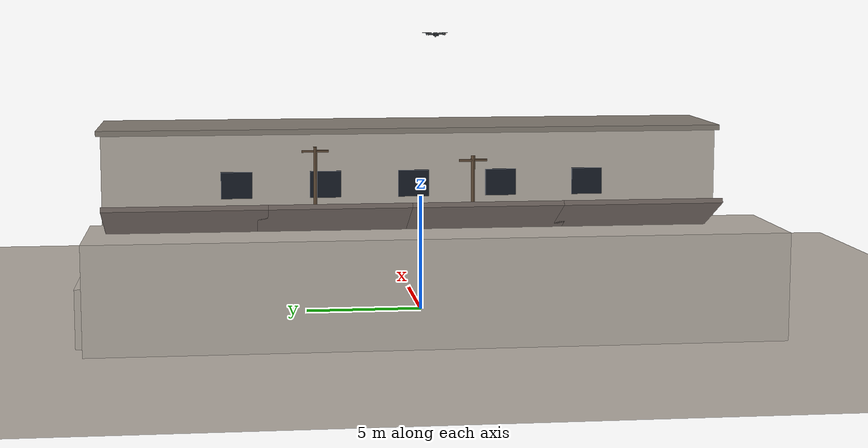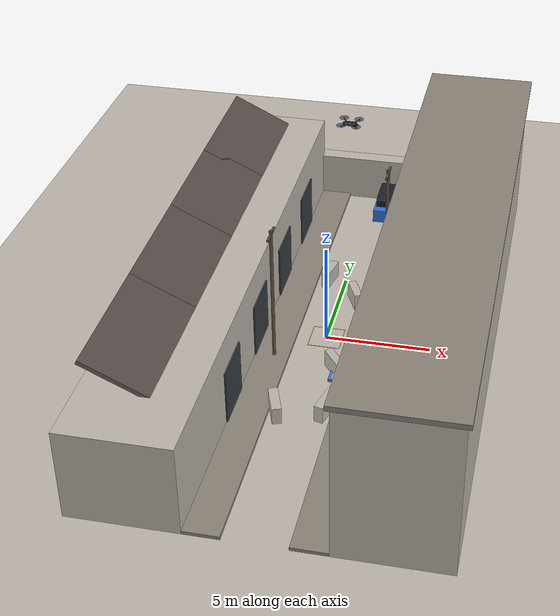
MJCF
<mujoco model="urban_street_quadrotor_autoland">

  <compiler angle="radian" autolimits="true" balanceinertia="true"/>
  <option gravity="0 0 -9.81" timestep="0.002" integrator="RK4"/>

  <default>
    <joint damping="0.002"/>
    <geom condim="4" friction="1.0 0.05 0.005" solref="0.01 1" solimp="0.9 0.95 0.001"/>
  </default>

  <asset>
    <!-- Warm Golden-Hour Skybox Matching Reference Image -->
    <texture name="sky" type="skybox" builtin="gradient" rgb1="0.45 0.40 0.35" rgb2="0.18 0.14 0.20" width="512" height="512"/>

    <!-- High-Resolution Textures -->
    <texture name="pad_tex" type="2d" file="pad_texture.png"/>
    <material name="pad_mat" texture="pad_tex" texrepeat="1 1" shininess="0.2" specular="0.1"/>

    <texture name="street_tex" type="2d" file="street_tex.png"/>
    <material name="street_mat" texture="street_tex" texrepeat="4 8" shininess="0.08" specular="0.05"/>

    <texture name="brick_tex" type="2d" file="brick_tex.png"/>
    <material name="brick_mat" texture="brick_tex" texrepeat="3 3" shininess="0.05"/>

    <texture name="stucco_tex" type="2d" file="stucco_tex.png"/>
    <material name="stucco_mat" texture="stucco_tex" texrepeat="4 4" shininess="0.05"/>

    <texture name="barricade_tex" type="2d" file="barricade_tex.png"/>
    <material name="barricade_mat" texture="barricade_tex" texrepeat="1 1" shininess="0.1"/>

    <!-- Urban Materials -->
    <material name="roof_sheet" rgba="0.42 0.38 0.36 1.0" shininess="0.3"/>
    <material name="sidewalk_concrete" rgba="0.55 0.52 0.48 1.0" shininess="0.1"/>
    <material name="wood_pole" rgba="0.38 0.30 0.22 1.0"/>
    <material name="metal_dark" rgba="0.22 0.24 0.26 1.0" shininess="0.6"/>
    <material name="window_glass" rgba="0.10 0.12 0.16 1.0" shininess="0.9" specular="0.8"/>
    <material name="hydrant_red" rgba="0.85 0.18 0.12 1.0" shininess="0.5"/>
    <material name="car_blue" rgba="0.20 0.45 0.85 1.0" shininess="0.7"/>

    <!-- Reference Drone Materials (Matte Charcoal & Gunmetal) -->
    <material name="matte_charcoal" rgba="0.15 0.17 0.19 1.0" shininess="0.3" specular="0.2"/>
    <material name="body_dark_accent" rgba="0.10 0.11 0.12 1.0" shininess="0.5" specular="0.3"/>
    <material name="motor_gunmetal" rgba="0.35 0.38 0.42 1.0" shininess="0.8" specular="0.6"/>
    <material name="hub_black" rgba="0.05 0.05 0.05 1.0"/>
    <material name="led_glow_blue" rgba="0.20 0.65 1.0 1.0" emission="1.5"/>
    <material name="led_glow_red" rgba="1.0 0.25 0.25 1.0" emission="1.2"/>
    <material name="prop_translucent" rgba="0.12 0.14 0.16 0.55"/>
    <material name="lens_glass" rgba="0.02 0.02 0.05 1.0" shininess="1.0" specular="0.9"/>
  </asset>

  <visual>
    <headlight ambient="0.55 0.50 0.45" diffuse="0.80 0.72 0.65" specular="0.25 0.22 0.18"/>
    <rgba fog="0.25 0.20 0.22 1"/>
    <quality shadowsize="2048"/>
  </visual>

  <worldbody>
    <!-- Ground Road Surface (Corridor Street) -->
    <geom name="ground" type="plane" size="40 40 0.1" material="street_mat" pos="0 0 0"/>

    <!-- URBAN ENVIRONMENT MODEL                                            -->

    <!-- Left Side: Industrial Warehouses with Gabled Roofs & Garage Doors -->
    <body name="warehouse_block_left" pos="-5.5 0 0">
      <geom name="wh_wall_1" type="box" size="2.5 14.0 2.2" pos="0 0 2.2" material="brick_mat" contype="1" conaffinity="1"/>
      <geom name="wh_roof_1" type="box" size="2.6 3.2 0.1" pos="0 -8.0 4.6" euler="0 0.45 0" material="roof_sheet"/>
      <geom name="wh_roof_2" type="box" size="2.6 3.2 0.1" pos="0 -2.0 4.6" euler="0 0.45 0" material="roof_sheet"/>
      <geom name="wh_roof_3" type="box" size="2.6 3.2 0.1" pos="0 4.0 4.6" euler="0 0.45 0" material="roof_sheet"/>
      <geom name="wh_roof_4" type="box" size="2.6 3.2 0.1" pos="0 10.0 4.6" euler="0 0.45 0" material="roof_sheet"/>

      <geom name="garage_door_1" type="box" size="0.05 1.2 1.4" pos="2.52 -6.0 1.4" material="metal_dark"/>
      <geom name="garage_door_2" type="box" size="0.05 1.2 1.4" pos="2.52 -1.0 1.4" material="metal_dark"/>
      <geom name="garage_door_3" type="box" size="0.05 1.2 1.4" pos="2.52 4.0 1.4" material="metal_dark"/>
      <geom name="garage_door_4" type="box" size="0.05 1.2 1.4" pos="2.52 9.0 1.4" material="metal_dark"/>
      <geom name="sidewalk_l" type="box" size="0.8 14.0 0.08" pos="3.3 0 0.08" material="sidewalk_concrete"/>
    </body>

    <!-- Right Side: Weathered Ochre Stucco Multi-Story Apartment Building -->
    <body name="building_block_right" pos="5.5 0 0">
      <geom name="bld_main" type="box" size="2.5 14.0 3.8" pos="0 0 3.8" material="stucco_mat" contype="1" conaffinity="1"/>
      <geom name="bld_cornice" type="box" size="2.65 14.2 0.12" pos="0 0 7.6" material="sidewalk_concrete"/>

      <geom name="win_1_1" type="box" size="0.05 0.7 0.6" pos="-2.52 -8.0 2.2" material="window_glass"/>
      <geom name="win_1_2" type="box" size="0.05 0.7 0.6" pos="-2.52 -4.0 2.2" material="window_glass"/>
      <geom name="win_1_3" type="box" size="0.05 0.7 0.6" pos="-2.52 0.0 2.2" material="window_glass"/>
      <geom name="win_1_4" type="box" size="0.05 0.7 0.6" pos="-2.52 4.0 2.2" material="window_glass"/>
      <geom name="win_1_5" type="box" size="0.05 0.7 0.6" pos="-2.52 8.0 2.2" material="window_glass"/>

      <geom name="win_2_1" type="box" size="0.05 0.7 0.6" pos="-2.52 -8.0 5.2" material="window_glass"/>
      <geom name="win_2_2" type="box" size="0.05 0.7 0.6" pos="-2.52 -4.0 5.2" material="window_glass"/>
      <geom name="win_2_3" type="box" size="0.05 0.7 0.6" pos="-2.52 0.0 5.2" material="window_glass"/>
      <geom name="win_2_4" type="box" size="0.05 0.7 0.6" pos="-2.52 4.0 5.2" material="window_glass"/>
      <geom name="win_2_5" type="box" size="0.05 0.7 0.6" pos="-2.52 8.0 5.2" material="window_glass"/>

      <geom name="sidewalk_r" type="box" size="0.8 14.0 0.08" pos="-3.3 0 0.08" material="sidewalk_concrete"/>
      <geom name="hydrant_base" type="cylinder" size="0.09 0.22" pos="-2.7 1.5 0.30" material="hydrant_red"/>
      <geom name="hydrant_top" type="sphere" size="0.09" pos="-2.7 1.5 0.52" material="hydrant_red"/>
    </body>

    <!-- Utility Telephone Poles & Street Props -->
    <body name="street_props" pos="0 0 0">
      <geom name="pole_1" type="cylinder" size="0.08 3.5" pos="-2.1 -2.0 3.5" material="wood_pole"/>
      <geom name="pole_1_cross" type="box" size="0.05 0.6 0.05" pos="-2.1 -2.0 6.8" material="wood_pole"/>
      <geom name="pole_2" type="cylinder" size="0.08 3.5" pos="2.1 4.5 3.5" material="wood_pole"/>
      <geom name="pole_2_cross" type="box" size="0.05 0.6 0.05" pos="2.1 4.5 6.8" material="wood_pole"/>
    </body>

    <!-- Concrete Red-and-White Hazard Barricades (Non-overlapping, Clear of Landing Pad) -->
    <body name="barricades" pos="0 0 0">
      <!-- Foreground Barricades (South of Landing Pad) -->
      <geom name="barr_1" type="box" size="0.22 0.75 0.42" pos="-1.1 -6.0 0.42" euler="0 0 0.35" material="barricade_mat" contype="1" conaffinity="1"/>
      <geom name="barr_2" type="box" size="0.22 0.75 0.42" pos="1.1 -5.5 0.42" euler="0 0 -0.25" material="barricade_mat" contype="1" conaffinity="1"/>
      <geom name="barr_3" type="box" size="0.20 0.65 0.42" pos="0.9 -2.5 0.42" euler="0 0 0.65" material="barricade_mat" contype="1" conaffinity="1"/>

      <!-- Background Barricades (North of Landing Pad, clear of 0,0) -->
      <geom name="barr_5" type="box" size="0.20 0.65 0.42" pos="0.8 3.2 0.42" euler="0 0 0.45" material="barricade_mat" contype="1" conaffinity="1"/>
      <geom name="barr_6" type="box" size="0.20 0.65 0.42" pos="-0.8 4.8 0.42" euler="0 0 -0.20" material="barricade_mat" contype="1" conaffinity="1"/>
      <geom name="barr_side" type="box" size="0.20 0.60 0.42" pos="2.2 -1.5 0.42" euler="0 0 0.85" material="barricade_mat" contype="1" conaffinity="1"/>
    </body>

    <!-- Distant Street Curve, Back Walls & Parked Vehicle -->
    <body name="distant_street" pos="0 14.0 0">
      <geom name="back_wall" type="box" size="6.5 0.4 1.2" pos="0 0 1.2" material="brick_mat"/>
      <geom name="car_chassis" type="box" size="0.85 1.6 0.35" pos="1.2 -1.5 0.45" material="car_blue"/>
      <geom name="car_cabin" type="box" size="0.75 0.95 0.28" pos="1.2 -1.7 0.95" material="window_glass"/>
    </body>

    <!-- TARGET LANDING PLATFORM & VEHICLE (Completely Unobstructed at 0,0)   -->
    <body name="landing_pad" pos="0 0 0.008">
      <geom name="pad_surface" type="box" size="0.75 0.75 0.005" material="pad_mat" contype="1" conaffinity="1"/>
      <geom name="pad_border_y" type="box" size="0.78 0.78 0.002" rgba="0.85 0.75 0.15 1" contype="0" conaffinity="0"/>
    </body>

    <!-- Dynamic Ground Vehicle (UGV) -->
    <body name="ground_vehicle" pos="1.2 -3.0 0.08">
      <joint name="vehicle_x" type="slide" axis="1 0 0" range="-4 4"/>
      <joint name="vehicle_y" type="slide" axis="0 1 0" range="-10 10"/>
      <geom name="veh_body" type="box" size="0.45 0.35 0.07" rgba="0.25 0.45 0.80 1" contype="1" conaffinity="1"/>
      <geom name="veh_deck" type="box" size="0.32 0.32 0.006" pos="0 0 0.075" material="pad_mat"/>
    </body>

    <!-- ENLARGED SLEEK ENTERPRISE QUADROTOR (Prominent & High-Fidelity)      -->
    <body name="drone" pos="1.2 -0.8 12.0">
      <freejoint name="drone_free"/>
      <inertial pos="0 0 0" mass="3.5" diaginertia="0.045 0.045 0.080"/>

      <!-- 1. Fuselage (Enlarged & Prominent) -->
      <geom name="body_main" type="box" size="0.26 0.10 0.055" material="matte_charcoal" contype="1" conaffinity="1"/>
      <geom name="body_top_lid" type="box" size="0.22 0.08 0.015" pos="0 0 0.060" material="body_dark_accent" contype="0" conaffinity="0"/>
      <geom name="body_nose_slope" type="capsule" size="0.06" fromto="0.20 0 0.015 0.28 0 -0.015" material="matte_charcoal"/>
      <geom name="body_tail_taper" type="capsule" size="0.05" fromto="-0.20 0 0.015 -0.28 0 0.020" material="matte_charcoal"/>

      <!-- 2. Nose Vision Sensors -->
      <geom name="sensor_eye_l" type="cylinder" size="0.012 0.006" pos="0.27 0.038 0.008" material="lens_glass" euler="0 1.5708 0"/>
      <geom name="sensor_eye_r" type="cylinder" size="0.012 0.006" pos="0.27 -0.038 0.008" material="lens_glass" euler="0 1.5708 0"/>

      <!-- 3. Gimbal Camera -->
      <geom name="gimbal_arm" type="cylinder" size="0.014 0.022" pos="0.19 0 -0.055" material="motor_gunmetal"/>
      <geom name="gimbal_body" type="sphere" size="0.040" pos="0.19 0 -0.085" material="body_dark_accent"/>
      <geom name="gimbal_lens" type="cylinder" size="0.022 0.010" pos="0.22 0 -0.085" material="lens_glass" euler="0 1.5708 0"/>

      <!-- Onboard Downward Camera Site -->
      <camera name="onboard_cam" pos="0.15 0 -0.09" euler="3.14159 0 0" fovy="60"/>

      <!-- 4. Four Large Rectangular Cantilever Arms -->
      <geom name="arm_fl" type="capsule" size="0.020" fromto="0.14 0.10 0.015 0.32 0.36 0.010" material="matte_charcoal"/>
      <geom name="arm_fr" type="capsule" size="0.020" fromto="0.14 -0.10 0.015 0.32 -0.36 0.010" material="matte_charcoal"/>
      <geom name="arm_rl" type="capsule" size="0.020" fromto="-0.14 0.10 0.015 -0.32 0.36 0.020" material="matte_charcoal"/>
      <geom name="arm_rr" type="capsule" size="0.020" fromto="-0.14 -0.10 0.015 -0.32 -0.36 0.020" material="matte_charcoal"/>

      <!-- 5. Gunmetal Motor Pods & Glowing Blue Navigation LEDs -->
      <geom name="motor_base_fl" type="cylinder" size="0.034 0.022" pos="0.32 0.36 0.020" material="body_dark_accent"/>
      <geom name="motor_top_fl" type="cylinder" size="0.030 0.014" pos="0.32 0.36 0.052" material="motor_gunmetal"/>
      <geom name="led_fl" type="box" size="0.012 0.020 0.008" pos="0.32 0.395 0.008" material="led_glow_blue"/>
      <geom name="prop_fl" type="cylinder" size="0.20 0.003" pos="0.32 0.36 0.068" material="prop_translucent" contype="0" conaffinity="0"/>

      <geom name="motor_base_fr" type="cylinder" size="0.034 0.022" pos="0.32 -0.36 0.020" material="body_dark_accent"/>
      <geom name="motor_top_fr" type="cylinder" size="0.030 0.014" pos="0.32 -0.36 0.052" material="motor_gunmetal"/>
      <geom name="led_fr" type="box" size="0.012 0.020 0.008" pos="0.32 -0.395 0.008" material="led_glow_blue"/>
      <geom name="prop_fr" type="cylinder" size="0.20 0.003" pos="0.32 -0.36 0.068" material="prop_translucent" contype="0" conaffinity="0"/>

      <geom name="motor_base_rl" type="cylinder" size="0.034 0.022" pos="-0.32 0.36 0.032" material="body_dark_accent"/>
      <geom name="motor_top_rl" type="cylinder" size="0.030 0.014" pos="-0.32 0.36 0.064" material="motor_gunmetal"/>
      <geom name="led_rl" type="sphere" size="0.009" pos="-0.32 0.395 0.018" material="led_glow_red"/>
      <geom name="prop_rl" type="cylinder" size="0.20 0.003" pos="-0.32 0.36 0.080" material="prop_translucent" contype="0" conaffinity="0"/>

      <geom name="motor_base_rr" type="cylinder" size="0.034 0.022" pos="-0.32 -0.36 0.032" material="body_dark_accent"/>
      <geom name="motor_top_rr" type="cylinder" size="0.030 0.014" pos="-0.32 -0.36 0.064" material="motor_gunmetal"/>
      <geom name="led_rr" type="sphere" size="0.009" pos="-0.32 -0.395 0.018" material="led_glow_red"/>
      <geom name="prop_rr" type="cylinder" size="0.20 0.003" pos="-0.32 -0.36 0.080" material="prop_translucent" contype="0" conaffinity="0"/>

      <!-- 6. Integrated Rubber Feet -->
      <geom name="foot_fl" type="box" size="0.016 0.016 0.024" pos="0.32 0.36 -0.020" material="hub_black"/>
      <geom name="foot_fr" type="box" size="0.016 0.016 0.024" pos="0.32 -0.36 -0.020" material="hub_black"/>
      <geom name="foot_rl" type="box" size="0.016 0.016 0.024" pos="-0.32 0.36 -0.008" material="hub_black"/>
      <geom name="foot_rr" type="box" size="0.016 0.016 0.024" pos="-0.32 -0.36 -0.008" material="hub_black"/>

      <site name="imu_site" pos="0 0 0"/>
    </body>

  </worldbody>

  <!-- Actuators: Preserving all flight physics -->
  <actuator>
    <general name="thrust_z" joint="drone_free" gear="0 0 1 0 0 0" ctrllimited="true" ctrlrange="0 100"/>
    <general name="force_x" joint="drone_free" gear="1 0 0 0 0 0" ctrllimited="true" ctrlrange="-50 50"/>
    <general name="force_y" joint="drone_free" gear="0 1 0 0 0 0" ctrllimited="true" ctrlrange="-50 50"/>
    <general name="torque_z" joint="drone_free" gear="0 0 0 0 0 1" ctrllimited="true" ctrlrange="-5 5"/>
  </actuator>

</mujoco>
